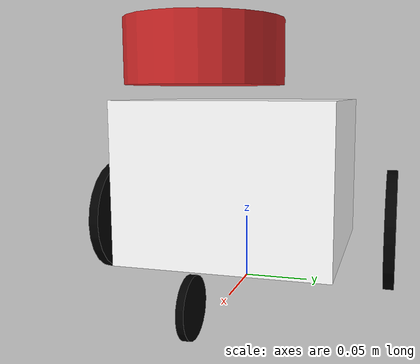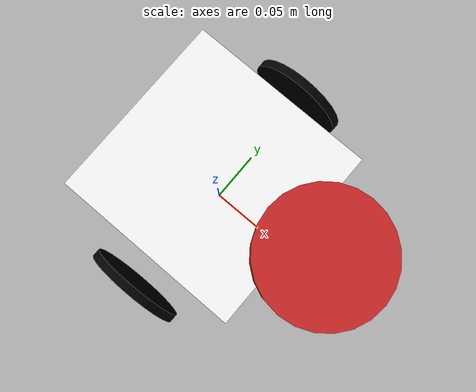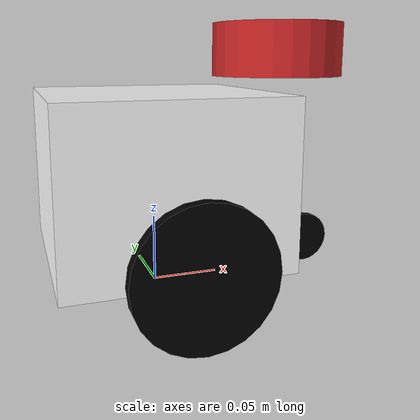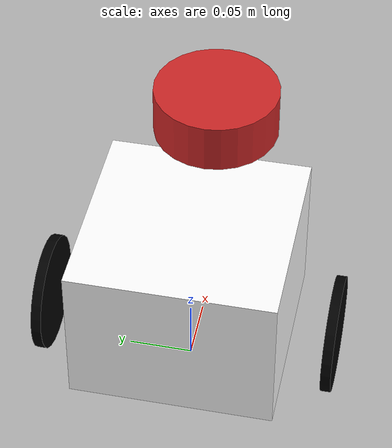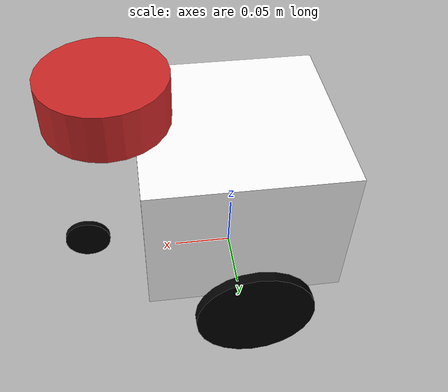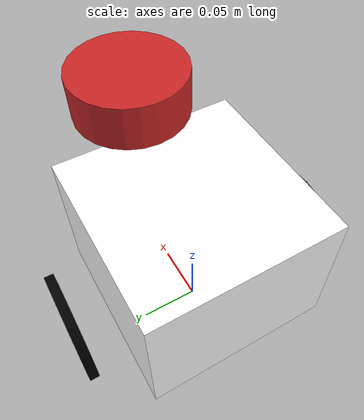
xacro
<?xml version="1.0"?>
<robot xmlns:xacro="http://www.ros.org/wiki/xacro" name="diffbot">

  <!-- Include Lidar Sensor Definition -->
  <xacro:include filename="lidar.xacro"/>

  <!-- Base Link -->
  <link name="base_link">
    <visual>
      <geometry>
        <box size="0.16 0.16 0.12"/>
      </geometry>
      <origin rpy="0 0 0" xyz="0 0 0.085"/>
      <material name="white">
        <color rgba="1 1 1 1"/>
      </material>
    </visual>
  </link>

  <!-- Left Wheel -->
  <joint name="left_wheel_joint" type="continuous">
    <parent link="base_link"/>
    <child link="lwheel"/>
    <origin xyz="0 0.115 0.046" rpy="1.5708 0 0"/>
  </joint>
  <link name="lwheel">
    <visual>
      <geometry>
        <cylinder length="0.008" radius="0.046"/>
      </geometry>
      <origin rpy="0 0 0" xyz="0 0 0"/>
      <material name="black">
        <color rgba="0 0 0 1"/>
      </material>
    </visual>
  </link>

  <!-- Right Wheel -->
  <joint name="right_wheel_joint" type="continuous">
    <parent link="base_link"/>
    <child link="rwheel"/>
    <origin xyz="0 -0.115 0.046" rpy="-1.5708 0 0"/>
  </joint>
  <link name="rwheel">
    <visual>
      <geometry>
        <cylinder length="0.008" radius="0.046"/>
      </geometry>
      <origin rpy="0 0 0" xyz="0 0 0"/>
      <material name="black">
        <color rgba="0 0 0 1"/>
      </material>
    </visual>
  </link>

  <!-- Front Caster Wheel (fixed) -->
  <joint name="front_wheel_joint" type="fixed">
    <parent link="base_link"/>
    <child link="fwheel"/>
    <origin xyz="0.13 0 0.02" rpy="0 0 0"/>
  </joint>
  <link name="fwheel">
    <visual>
      <geometry>
        <cylinder length="0.005" radius="0.020"/>
      </geometry>
      <origin rpy="1.578 0 0" xyz="0 0 0"/>
      <material name="black">
        <color rgba="0 0 0 1"/>
      </material>
    </visual>
  </link>

  <!-- Gazebo Plugins -->
  <gazebo>
    <plugin name="diff_drive_controller" filename="libgazebo_ros_diff_drive.so">
      <ros>
        <namespace>/</namespace>
      </ros>
      <updateRate>50</updateRate>
      <leftJoint>left_joint</leftJoint>
      <rightJoint>right_joint</rightJoint>
      <wheelSeparation>0.23</wheelSeparation>
      <wheelDiameter>0.092</wheelDiameter>
      <cmdVelTopic>/cmd_vel</cmdVelTopic>
      <odomTopic>/odom</odomTopic>
      <odomFrame>odom</odomFrame>
      <robotBaseFrame>base_link</robotBaseFrame>
      <publishTf>true</publishTf>
    </plugin>
  </gazebo>

</robot>

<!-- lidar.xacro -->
<robot xmlns:xacro="http://www.ros.org/wiki/xacro" >

    <joint name="laser_joint" type="fixed">
        <parent link="base_link"/>
        <child link="laser_frame"/>
        <origin xyz="0.1 0 0.175" rpy="0 0 0"/>
    </joint>

    <link name="laser_frame">
        <visual>
            <geometry>
                <cylinder radius="0.05" length="0.04"/>
            </geometry>
            <material name="red"/>
        </visual>
        <collision>
            <geometry>
                <cylinder radius="0.05" length="0.04"/>
            </geometry>
        </collision>
            <inertial>
      <origin xyz="0 0 0" rpy="0 0 0"/>
      <mass value="0.1"/>

      <inertia
        ixx="7.6e-06" ixy="0.0" ixz="0.0"
        iyy="7.6e-06" iyz="0.0"
        izz="1.25e-04"/>
    </inertial>

    </link>

    <gazebo reference="laser_frame">
        <material>Gazebo/Red</material>

        <sensor name="laser" type="ray">
            <pose> 0 0 0 0 0 0 </pose>
            <visualize>true</visualize>
            <update_rate>10</update_rate>
            <ray>
                <scan>
                    <horizontal>
                        <samples>360</samples>
                        <min_angle>-3.14</min_angle>
                        <max_angle>3.14</max_angle>
                    </horizontal>
                </scan>
                <range>
                    <min>0.3</min>
                    <max>12</max>
                </range>
            </ray>
            <plugin name="laser_controller" filename="libgazebo_ros_ray_sensor.so">
                <ros>
                    <argument>~/out:=scan</argument>
                </ros>
                <output_type>sensor_msgs/LaserScan</output_type>
                <frame_name>laser_frame</frame_name>
            </plugin>
        </sensor>
    </gazebo>

</robot>
